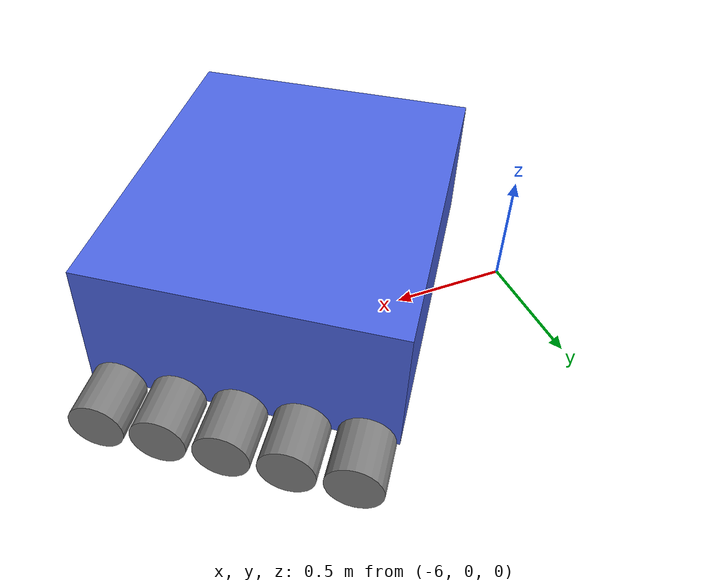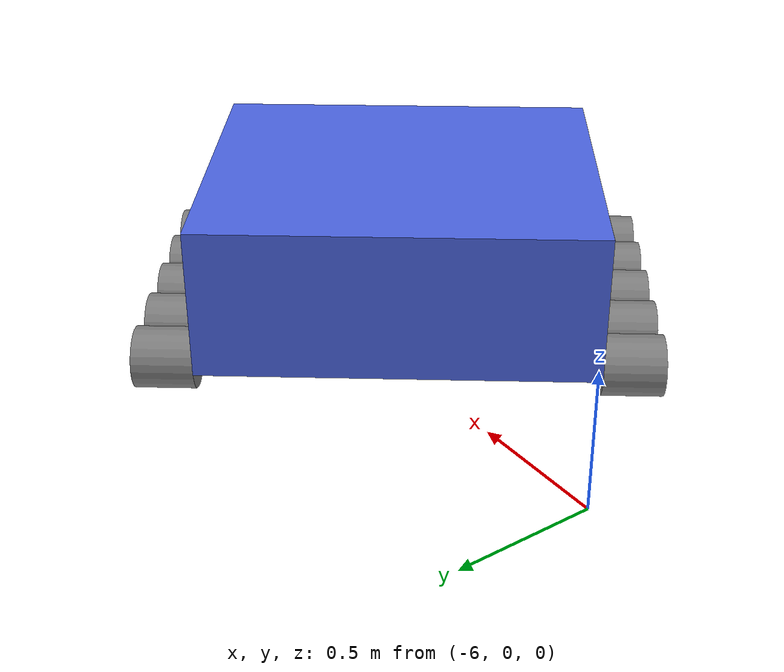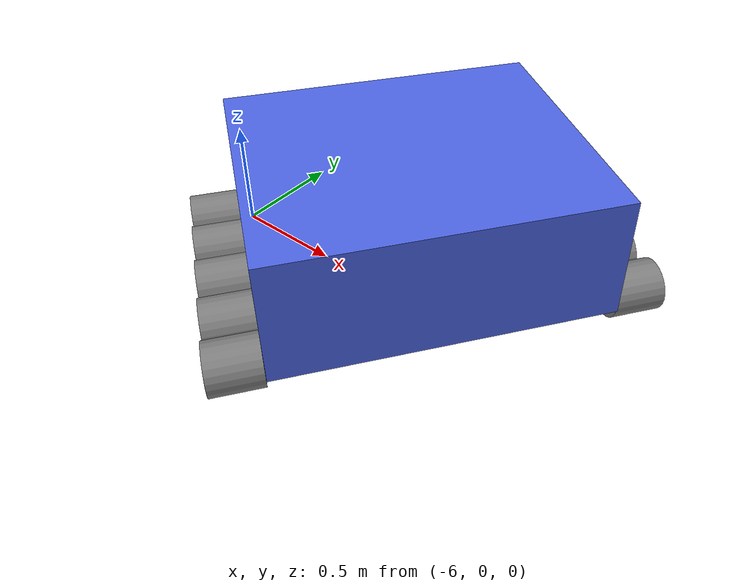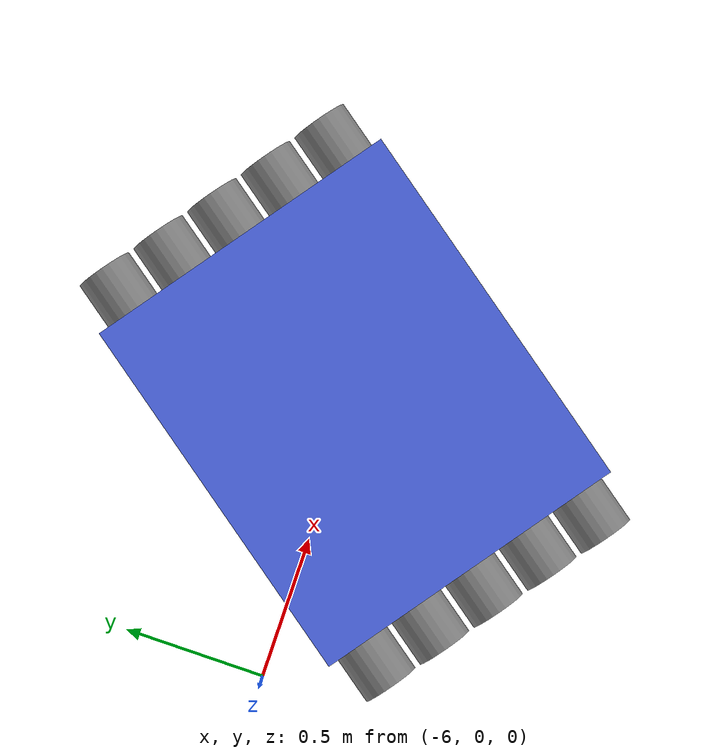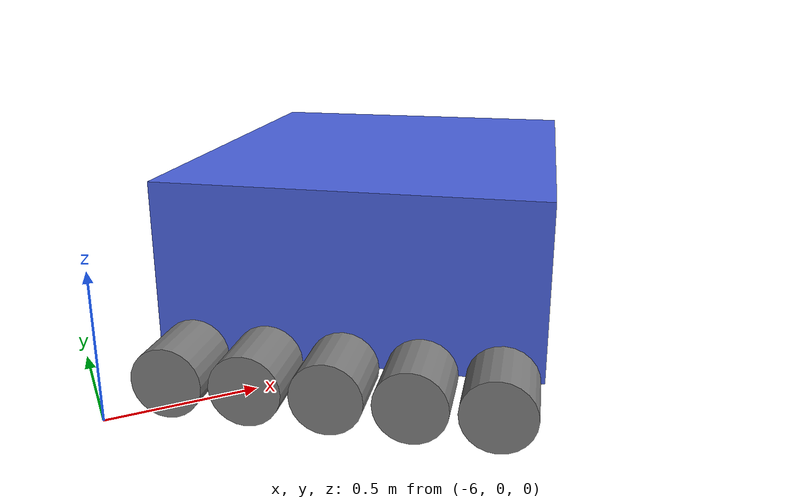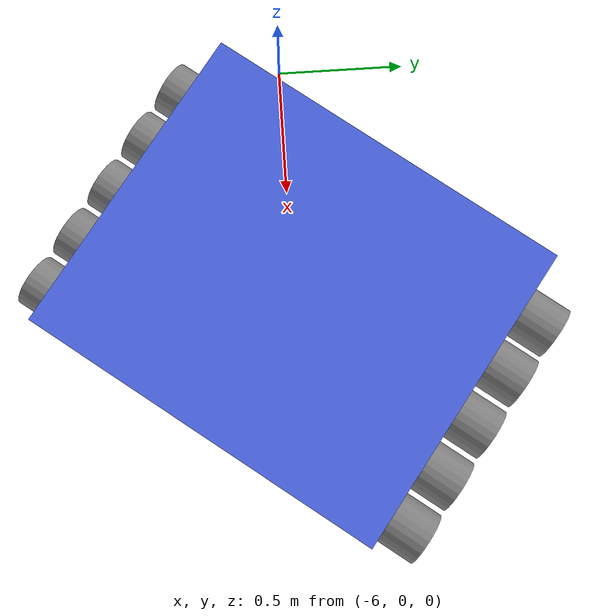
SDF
<sdf version="1.9">
 <world name="agriculture_v3">
  <physics name="1ms" type="ode">
   <max_step_size>0.002</max_step_size>
   <real_time_factor>0.5</real_time_factor>
   <ode>
    <solver><type>world</type><iters>100</iters></solver>
    <constraints><contact_surface_layer>0.001</contact_surface_layer></constraints>
   </ode>
  </physics>
  <plugin filename="gz-sim-physics-system" name="gz::sim::systems::Physics"/>
  <plugin filename="gz-sim-user-commands-system" name="gz::sim::systems::UserCommands"/>
  <plugin filename="gz-sim-scene-broadcaster-system" name="gz::sim::systems::SceneBroadcaster"/>
  <plugin filename="gz-sim-sensors-system" name="gz::sim::systems::Sensors">
   <render_engine>ogre2</render_engine>
  </plugin>
  <plugin filename="BasicSystem" name="jangauto_gazebo::BasicSystem"/>
  <plugin filename="FullSystem" name="jangauto_gazebo::FullSystem"/>
  <spherical_coordinates>
   <surface_model>EARTH_WGS84</surface_model>
   <world_frame_orientation>ENU</world_frame_orientation>
   <latitude_deg>37.0</latitude_deg>
   <longitude_deg>127.0</longitude_deg>
   <elevation>0</elevation>
   <heading_deg>0</heading_deg>
  </spherical_coordinates>
  <light type="directional" name="sun">
   <pose>0 0 40 0 0 0</pose>
   <diffuse>0.8 0.8 0.8 1</diffuse>
   <specular>0.2 0.2 0.2 1</specular>
   <attenuation>
    <range>1000</range>
    <constant>0.9</constant>
    <linear>0.01</linear>
    <quadratic>0.001</quadratic>
   </attenuation>
   <direction>-0.5 0.1 -0.9</direction>
  </light>
  <model name="tracked_v3">
   <self_collide>true</self_collide>
   <pose>-5 0 0.2 0 0 2.5</pose>
   <include merge="true"><uri>package://jangauto_description/models/tracked_v3</uri></include>
   <plugin filename="gz-sim-joint-state-publisher-system" name="gz::sim::systems::JointStatePublisher"/>
   <plugin filename="gz-sim-pose-publisher-system" name="gz::sim::systems::PosePublisher">
    <publish_model_pose>true</publish_model_pose>
    <publish_link_pose>true</publish_link_pose>
    <publish_sensor_pose>true</publish_sensor_pose>
    <use_pose_vector_msg>true</use_pose_vector_msg>
    <update_frequency>1</update_frequency>
    <static_publisher>false</static_publisher>
    <static_update_frequency>1</static_update_frequency>
   </plugin>
   <plugin filename="gz-sim-diff-drive-system" name="gz::sim::systems::DiffDrive">
    <left_joint>wheel_L1_joint</left_joint>
    <right_joint>wheel_R1_joint</right_joint>
    <left_joint>wheel_L2_joint</left_joint>
    <right_joint>wheel_R2_joint</right_joint>
    <left_joint>wheel_L3_joint</left_joint>
    <right_joint>wheel_R3_joint</right_joint>
    <left_joint>wheel_L4_joint</left_joint>
    <right_joint>wheel_R4_joint</right_joint>
    <left_joint>wheel_L5_joint</left_joint>
    <right_joint>wheel_R5_joint</right_joint>
    <wheel_separation>1.5</wheel_separation>
    <wheel_radius>0.10</wheel_radius>
    <topic>/model/tracked_v3/cmd_vel_out</topic>
    <max_linear_acceleration>1</max_linear_acceleration>
    <min_linear_acceleration>-1</min_linear_acceleration>
    <max_angular_acceleration>2</max_angular_acceleration>
    <min_angular_acceleration>-2</min_angular_acceleration>
    <max_linear_velocity>5</max_linear_velocity>
    <min_linear_velocity>-5</min_linear_velocity>
    <max_angular_velocity>50</max_angular_velocity>
    <min_angular_velocity>-50</min_angular_velocity>
    <min_wheel_torque>-40</min_wheel_torque>
    <max_wheel_torque>40</max_wheel_torque>
   </plugin>
   <plugin filename="gz-sim-imu-system" name="gz::sim::systems::Imu"/>
   <plugin filename="gz-sim-navsat-system" name="gz::sim::systems::NavSat"/>
   <plugin filename="gz-sim-magnetometer-system" name="gz::sim::systems::Magnetometer"/>
  </model>
 </world>
</sdf>

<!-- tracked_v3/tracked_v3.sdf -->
<sdf version="1.9">

  <model name="tracked_v3">
    <static>false</static>
    <pose>0 0 0 0 0 0</pose>

    <link name="base_link">
      <!-- 차체 중심: 지면에서 0.35m 높이에 배치 (바퀴 반지름 0.1m + 0.25m 여유) -->
      <pose>0 0 0.35 0 0 0</pose>

      <inertial>
          <mass>100.0</mass>
          <!-- 차체 1.1m x 1.3m x 0.5m 기준 관성 모멘트: I = (1/12) * m * (w^2 + h^2) -->
          <inertia>
          <ixx>16.25</ixx> <iyy>12.25</iyy> <izz>28.33</izz>
          <ixy>0.0</ixy> <ixz>0.0</ixz> <iyz>0.0</iyz>
          </inertia>
      </inertial>

      <collision name="chassis_collision">
          <geometry>
          <!-- 차체: 길이 1.1m, 폭 1.3m, 높이 0.5m -->
          <box><size>1.1 1.3 0.5</size></box>
          </geometry>
      </collision>

      <visual name="chassis_visual">
          <geometry>
          <box><size>1.1 1.3 0.5</size></box>
          </geometry>
          <material>
          <ambient>0.3 0.4 0.9 1</ambient>
          <diffuse>0.3 0.4 0.9 1</diffuse>
          </material>
      </visual>

      <sensor name="imu_sensor" type="imu">
          <always_on>true</always_on>
          <update_rate>25</update_rate>
          <visualize>false</visualize>
          <topic>imu</topic>
          <pose>0 0 0.25 0 0 0</pose>
          <imu>
            <!-- CAL 계산이 정확한지 확인하려면 아래 스폰 pose(agriculture_v3.sdf)의
                 yaw와 이 노드가 계산해 낸 offset이 서로 부호까지 일치하는지 보면 됨. -->
            <angular_velocity>
              <x>
                <noise type="gaussian">
                  <mean>0.0</mean>
                  <stddev>0.01</stddev>
                </noise>
              </x>
              <y>
                <noise type="gaussian">
                  <mean>0.0</mean>
                  <stddev>0.01</stddev>
                </noise>
              </y>
              <z>
                <noise type="gaussian">
                  <mean>0.0</mean>
                  <stddev>0.01</stddev>
                </noise>
              </z>
            </angular_velocity>
            <linear_acceleration>
              <x>
                <noise type="gaussian">
                  <mean>0.0</mean>
                  <stddev>0.1</stddev>
                </noise>
              </x>
              <y>
                <noise type="gaussian">
                  <mean>0.0</mean>
                  <stddev>0.1</stddev>
                </noise>
              </y>
              <z>
                <noise type="gaussian">
                  <mean>0.0</mean>
                  <stddev>0.1</stddev>
                </noise>
              </z>
            </linear_acceleration>
          </imu>
      </sensor>

      <sensor name="navsat_sensor" type="navsat">
        <always_on>true</always_on>
        <update_rate>1.0</update_rate> <!-- 주파수 현실에 맞게 수정 -->
        <topic>navsat</topic>
        <visualize>false</visualize>
          <pose>0 0 0.25 0 0 0</pose>
      </sensor>

      <sensor name="magnetometer_sensor" type="magnetometer">
        <always_on>true</always_on>
        <update_rate>25.0</update_rate>
        <topic>magnetometer</topic>
          <pose>0 0 0.25 0 0 0</pose>

      </sensor>

      <sensor name="front_depth_camera" type="rgbd_camera">
        <always_on>true</always_on>
        <update_rate>15</update_rate>
        <visualize>true</visualize>
        <topic>front_depth_camera</topic>
        <pose>0.55 0 0.25 0 0 0</pose>
        <camera>
          <horizontal_fov>1.047</horizontal_fov>
          <image>
            <width>640</width>
            <height>480</height>
            <format>R8G8B8</format>
          </image>
          <clip>
            <near>0.1</near>
            <far>10.0</far>
          </clip>
        </camera>
      </sensor>

    </link>

    <link name="wheel_R1_link">
        <!-- 전방 우측 바퀴 1: x=0.44m, y=-0.751m (우측 바깥) -->
        <pose>0.44 -0.751 0.1 1.5708 0 0</pose>

      <visual name="wheel_R1_visual">
        <geometry>
          <cylinder>
            <radius>0.1</radius>
            <length>0.2</length>
          </cylinder>
        </geometry>
        <material>
          <ambient>0.5 0.5 0.5 1</ambient>
          <diffuse>0.5 0.5 0.5 1</diffuse>
          <specular>0.1 0.1 0.1 1</specular>
        </material>
      </visual>

      <collision name="wheel_R1_collision">
        <geometry>
          <cylinder>
            <radius>0.1</radius>
            <length>0.2</length>
          </cylinder>
        </geometry>

        <surface>
          <friction>
            <ode>
              <mu>1.2</mu>
              <mu2>0.7</mu2>
              <fdir1>1 0 0</fdir1>
              <slip1>0.0</slip1>
              <slip2>0.001</slip2>
            </ode>
          </friction>
          <contact>
            <ode>
              <soft_cfm>0.002</soft_cfm>
              <soft_erp>0.002</soft_erp>
              <kp>1000</kp>
              <kd>500</kd>
            </ode>
          </contact>
        </surface>
      </collision>

      <inertial>
        <mass>5.0</mass>
        <inertia>
          <ixx>0.0365</ixx>
          <iyy>0.0365</iyy>
          <izz>0.025</izz>
          <ixy>0</ixy>
          <ixz>0</ixz>
          <iyz>0</iyz>
        </inertia>
      </inertial>
    </link>

    <joint name="wheel_R1_joint" type="revolute">
      <parent>base_link</parent>
      <child>wheel_R1_link</child>

      <pose>0 0 0 0 0 0</pose>

      <axis>
        <xyz>0 0 -1</xyz>

        <limit>
          <lower>-1.79769e+308</lower>
          <upper>1.79769e+308</upper>
          <effort>10000.0</effort>
          <velocity>10000.0</velocity>
        </limit>

        <dynamics>
          <damping>0.1</damping>
          <friction>0.01</friction>
        </dynamics>
      </axis>

      <physics>
        <provide_feedback>true</provide_feedback>
      </physics>

    </joint>

    <link name="wheel_R2_link">
        <!-- 우측 바퀴 2: x=0.22m -->
        <pose>0.22 -0.751 0.1 1.5708 0 0</pose>

      <visual name="wheel_R2_visual">
        <geometry>
          <cylinder>
            <radius>0.1</radius>
            <length>0.2</length>
          </cylinder>
        </geometry>
        <material>
          <ambient>0.5 0.5 0.5 1</ambient>
          <diffuse>0.5 0.5 0.5 1</diffuse>
          <specular>0.1 0.1 0.1 1</specular>
        </material>
      </visual>

      <collision name="wheel_R2_collision">
        <geometry>
          <cylinder>
            <radius>0.1</radius>
            <length>0.2</length>
          </cylinder>
        </geometry>

        <surface>
          <friction>
            <ode>
              <mu>1.2</mu>
              <mu2>0.7</mu2>
              <fdir1>1 0 0</fdir1>
              <slip1>0.0</slip1>
              <slip2>0.001</slip2>
            </ode>
          </friction>
          <contact>
            <ode>
              <soft_cfm>0.002</soft_cfm>
              <soft_erp>0.002</soft_erp>
              <kp>1000</kp>
              <kd>500</kd>
            </ode>
          </contact>
        </surface>
      </collision>

      <inertial>
        <mass>5.0</mass>
        <inertia>
          <ixx>0.0365</ixx>
          <iyy>0.0365</iyy>
          <izz>0.025</izz>
          <ixy>0</ixy>
          <ixz>0</ixz>
          <iyz>0</iyz>
        </inertia>
      </inertial>
    </link>

    <joint name="wheel_R2_joint" type="revolute">
      <parent>base_link</parent>
      <child>wheel_R2_link</child>

      <pose>0 0 0 0 0 0</pose>

      <axis>
        <xyz>0 0 -1</xyz>

        <limit>
          <lower>-1.79769e+308</lower>
          <upper>1.79769e+308</upper>
          <effort>10000.0</effort>
          <velocity>10000.0</velocity>
        </limit>

        <dynamics>
          <damping>0.1</damping>
          <friction>0.01</friction>
        </dynamics>
      </axis>

      <physics>
        <provide_feedback>true</provide_feedback>
      </physics>

    </joint>

    <link name="wheel_R3_link">
        <!-- 우측 바퀴 3: x=0m (중앙) -->
        <pose>0 -0.751 0.1 1.5708 0 0</pose>

            <visual name="wheel_R3_visual">
        <geometry>
          <cylinder>
            <radius>0.1</radius>
            <length>0.2</length>
          </cylinder>
        </geometry>
        <material>
          <ambient>0.5 0.5 0.5 1</ambient>
          <diffuse>0.5 0.5 0.5 1</diffuse>
          <specular>0.1 0.1 0.1 1</specular>
        </material>
      </visual>

      <collision name="wheel_R3_collision">
        <geometry>
          <cylinder>
            <radius>0.1</radius>
            <length>0.2</length>
          </cylinder>
        </geometry>

        <surface>
          <friction>
            <ode>
              <mu>1.2</mu>
              <mu2>0.7</mu2>
              <fdir1>1 0 0</fdir1>
              <slip1>0.0</slip1>
              <slip2>0.001</slip2>
            </ode>
          </friction>
          <contact>
            <ode>
              <soft_cfm>0.002</soft_cfm>
              <soft_erp>0.002</soft_erp>
              <kp>1000</kp>
              <kd>500</kd>
            </ode>
          </contact>
        </surface>
      </collision>

      <inertial>
        <mass>5.0</mass>
        <inertia>
          <ixx>0.0365</ixx>
          <iyy>0.0365</iyy>
          <izz>0.025</izz>
          <ixy>0</ixy>
          <ixz>0</ixz>
          <iyz>0</iyz>
        </inertia>
      </inertial>
    </link>

    <joint name="wheel_R3_joint" type="revolute">
      <parent>base_link</parent>
      <child>wheel_R3_link</child>

      <pose>0 0 0 0 0 0</pose>

      <axis>
        <xyz>0 0 -1</xyz>

        <limit>
          <lower>-1.79769e+308</lower>
          <upper>1.79769e+308</upper>
          <effort>10000.0</effort>
          <velocity>10000.0</velocity>
        </limit>

        <dynamics>
          <damping>0.1</damping>
          <friction>0.01</friction>
        </dynamics>
      </axis>

      <physics>
        <provide_feedback>true</provide_feedback>
      </physics>

    </joint>

    <link name="wheel_R4_link">
        <!-- 우측 바퀴 4: x=-0.22m -->
        <pose>-0.22 -0.751 0.1 1.5708 0 0</pose>

      <visual name="wheel_R4_visual">
        <geometry>
          <cylinder>
            <radius>0.1</radius>
            <length>0.2</length>
          </cylinder>
        </geometry>
        <material>
          <ambient>0.5 0.5 0.5 1</ambient>
          <diffuse>0.5 0.5 0.5 1</diffuse>
          <specular>0.1 0.1 0.1 1</specular>
        </material>
      </visual>

      <collision name="wheel_R4_collision">
        <geometry>
          <cylinder>
            <radius>0.1</radius>
            <length>0.2</length>
          </cylinder>
        </geometry>

        <surface>
          <friction>
            <ode>
              <mu>1.2</mu>
              <mu2>0.7</mu2>
              <fdir1>1 0 0</fdir1>
              <slip1>0.0</slip1>
              <slip2>0.001</slip2>
            </ode>
          </friction>
          <contact>
            <ode>
              <soft_cfm>0.002</soft_cfm>
              <soft_erp>0.002</soft_erp>
              <kp>1000</kp>
              <kd>500</kd>
            </ode>
          </contact>
        </surface>
      </collision>

      <inertial>
        <mass>5.0</mass>
        <inertia>
          <ixx>0.0365</ixx>
          <iyy>0.0365</iyy>
          <izz>0.025</izz>
          <ixy>0</ixy>
          <ixz>0</ixz>
          <iyz>0</iyz>
        </inertia>
      </inertial>
    </link>

    <joint name="wheel_R4_joint" type="revolute">
      <parent>base_link</parent>
      <child>wheel_R4_link</child>

      <pose>0 0 0 0 0 0</pose>

      <axis>
        <xyz>0 0 -1</xyz>

        <limit>
          <lower>-1.79769e+308</lower>
          <upper>1.79769e+308</upper>
          <effort>10000.0</effort>
          <velocity>10000.0</velocity>
        </limit>

        <dynamics>
          <damping>0.1</damping>
          <friction>0.01</friction>
        </dynamics>
      </axis>

      <physics>
        <provide_feedback>true</provide_feedback>
      </physics>

    </joint>

    <link name="wheel_R5_link">
        <!-- 후방 우측 바퀴 5: x=-0.44m (후방) -->
        <pose>-0.44 -0.751 0.1 1.5708 0 0</pose>

      <visual name="wheel_R5_visual">
        <geometry>
          <cylinder>
            <radius>0.1</radius>
            <length>0.2</length>
          </cylinder>
        </geometry>
        <material>
          <ambient>0.5 0.5 0.5 1</ambient>
          <diffuse>0.5 0.5 0.5 1</diffuse>
          <specular>0.1 0.1 0.1 1</specular>
        </material>
      </visual>

      <collision name="wheel_R5_collision">
        <geometry>
          <cylinder>
            <radius>0.1</radius>
            <length>0.2</length>
          </cylinder>
        </geometry>

        <surface>
          <friction>
            <ode>
              <mu>1.2</mu>
              <mu2>0.7</mu2>
              <fdir1>1 0 0</fdir1>
              <slip1>0.0</slip1>
              <slip2>0.001</slip2>
            </ode>
          </friction>
          <contact>
            <ode>
              <soft_cfm>0.002</soft_cfm>
              <soft_erp>0.002</soft_erp>
              <kp>1000</kp>
              <kd>500</kd>
            </ode>
          </contact>
        </surface>
      </collision>

      <inertial>
        <mass>5.0</mass>
        <inertia>
          <ixx>0.0365</ixx>
          <iyy>0.0365</iyy>
          <izz>0.025</izz>
          <ixy>0</ixy>
          <ixz>0</ixz>
          <iyz>0</iyz>
        </inertia>
      </inertial>
    </link>

    <joint name="wheel_R5_joint" type="revolute">
      <parent>base_link</parent>
      <child>wheel_R5_link</child>

      <pose>0 0 0 0 0 0</pose>

      <axis>
        <xyz>0 0 -1</xyz>

        <limit>
          <lower>-1.79769e+308</lower>
          <upper>1.79769e+308</upper>
          <effort>10000.0</effort>
          <velocity>10000.0</velocity>
        </limit>

        <dynamics>
          <damping>0.1</damping>
          <friction>0.01</friction>
        </dynamics>
      </axis>

      <physics>
        <provide_feedback>true</provide_feedback>
      </physics>

    </joint>

    <link name="wheel_L1_link">
        <!-- 전방 좌측 바퀴 1: x=0.44m (전방), y=0.751m (좌측 바깥) -->
        <pose>0.44 0.751 0.1 1.5708 0 0</pose>

      <visual name="wheel_L1_visual">
        <geometry>
          <cylinder>
            <radius>0.1</radius>
            <length>0.2</length>
          </cylinder>
        </geometry>
        <material>
          <ambient>0.5 0.5 0.5 1</ambient>
          <diffuse>0.5 0.5 0.5 1</diffuse>
          <specular>0.1 0.1 0.1 1</specular>
        </material>
      </visual>

      <collision name="wheel_L1_collision">
        <geometry>
          <cylinder>
            <radius>0.1</radius>
            <length>0.2</length>
          </cylinder>
        </geometry>

        <surface>
          <friction>
            <ode>
              <mu>1.2</mu>
              <mu2>0.7</mu2>
              <fdir1>1 0 0</fdir1>
              <slip1>0.0</slip1>
              <slip2>0.001</slip2>
            </ode>
          </friction>
          <contact>
            <ode>
              <soft_cfm>0.002</soft_cfm>
              <soft_erp>0.002</soft_erp>
              <kp>1000</kp>
              <kd>500</kd>
            </ode>
          </contact>
        </surface>
      </collision>

      <inertial>
        <mass>5.0</mass>
        <inertia>
          <ixx>0.0365</ixx>
          <iyy>0.0365</iyy>
          <izz>0.025</izz>
          <ixy>0</ixy>
          <ixz>0</ixz>
          <iyz>0</iyz>
        </inertia>
      </inertial>
    </link>

    <joint name="wheel_L1_joint" type="revolute">
      <parent>base_link</parent>
      <child>wheel_L1_link</child>

      <pose>0 0 0 0 0 0</pose>

      <axis>
        <xyz>0 0 -1</xyz>

        <limit>
          <lower>-1.79769e+308</lower>
          <upper>1.79769e+308</upper>
          <effort>10000.0</effort>
          <velocity>10000.0</velocity>
        </limit>

        <dynamics>
          <damping>0.1</damping>
          <friction>0.01</friction>
        </dynamics>
      </axis>

      <physics>
        <provide_feedback>true</provide_feedback>
      </physics>

    </joint>

    <link name="wheel_L2_link">
        <!-- 좌측 바퀴 2: x=0.22m -->
        <pose>0.22 0.751 0.1 1.5708 0 0</pose>

      <visual name="wheel_L2_visual">
        <geometry>
          <cylinder>
            <radius>0.1</radius>
            <length>0.2</length>
          </cylinder>
        </geometry>
        <material>
          <ambient>0.5 0.5 0.5 1</ambient>
          <diffuse>0.5 0.5 0.5 1</diffuse>
          <specular>0.1 0.1 0.1 1</specular>
        </material>
      </visual>

      <collision name="wheel_L2_collision">
        <geometry>
          <cylinder>
            <radius>0.1</radius>
            <length>0.2</length>
          </cylinder>
        </geometry>

        <surface>
          <friction>
            <ode>
              <mu>1.2</mu>
              <mu2>0.7</mu2>
              <fdir1>1 0 0</fdir1>
              <slip1>0.0</slip1>
              <slip2>0.001</slip2>
            </ode>
          </friction>
          <contact>
            <ode>
              <soft_cfm>0.002</soft_cfm>
              <soft_erp>0.002</soft_erp>
              <kp>1000</kp>
              <kd>500</kd>
            </ode>
          </contact>
        </surface>
      </collision>

      <inertial>
        <mass>5.0</mass>
        <inertia>
          <ixx>0.0365</ixx>
          <iyy>0.0365</iyy>
          <izz>0.025</izz>
          <ixy>0</ixy>
          <ixz>0</ixz>
          <iyz>0</iyz>
        </inertia>
      </inertial>
    </link>

    <joint name="wheel_L2_joint" type="revolute">
      <parent>base_link</parent>
      <child>wheel_L2_link</child>

      <pose>0 0 0 0 0 0</pose>

      <axis>
        <xyz>0 0 -1</xyz>

        <limit>
          <lower>-1.79769e+308</lower>
          <upper>1.79769e+308</upper>
          <effort>10000.0</effort>
          <velocity>10000.0</velocity>
        </limit>

        <dynamics>
          <damping>0.1</damping>
          <friction>0.01</friction>
        </dynamics>
      </axis>

      <physics>
        <provide_feedback>true</provide_feedback>
      </physics>

    </joint>

    <link name="wheel_L3_link">
        <!-- 좌측 바퀴 3: x=0m (중앙) -->
        <pose>0 0.751 0.1 1.5708 0 0</pose>

            <visual name="wheel_L3_visual">
        <geometry>
          <cylinder>
            <radius>0.1</radius>
            <length>0.2</length>
          </cylinder>
        </geometry>
        <material>
          <ambient>0.5 0.5 0.5 1</ambient>
          <diffuse>0.5 0.5 0.5 1</diffuse>
          <specular>0.1 0.1 0.1 1</specular>
        </material>
      </visual>

      <collision name="wheel_L3_collision">
        <geometry>
          <cylinder>
            <radius>0.1</radius>
            <length>0.2</length>
          </cylinder>
        </geometry>

        <surface>
          <friction>
            <ode>
              <mu>1.2</mu>
              <mu2>0.7</mu2>
              <fdir1>1 0 0</fdir1>
              <slip1>0.0</slip1>
              <slip2>0.001</slip2>
            </ode>
          </friction>
          <contact>
            <ode>
              <soft_cfm>0.002</soft_cfm>
              <soft_erp>0.002</soft_erp>
              <kp>1000</kp>
              <kd>500</kd>
            </ode>
          </contact>
        </surface>
      </collision>

      <inertial>
        <mass>5.0</mass>
        <inertia>
          <ixx>0.0365</ixx>
          <iyy>0.0365</iyy>
          <izz>0.025</izz>
          <ixy>0</ixy>
          <ixz>0</ixz>
          <iyz>0</iyz>
        </inertia>
      </inertial>
    </link>

    <joint name="wheel_L3_joint" type="revolute">
      <parent>base_link</parent>
      <child>wheel_L3_link</child>

      <pose>0 0 0 0 0 0</pose>

      <axis>
        <xyz>0 0 -1</xyz>

        <limit>
          <lower>-1.79769e+308</lower>
          <upper>1.79769e+308</upper>
          <effort>10000.0</effort>
          <velocity>10000.0</velocity>
        </limit>

        <dynamics>
          <damping>0.1</damping>
          <friction>0.01</friction>
        </dynamics>
      </axis>

      <physics>
        <provide_feedback>true</provide_feedback>
      </physics>

    </joint>

    <link name="wheel_L4_link">
        <!-- 좌측 바퀴 4: x=-0.22m -->
        <pose>-0.22 0.751 0.1 1.5708 0 0</pose>

            <visual name="wheel_L4_visual">
        <geometry>
          <cylinder>
            <radius>0.1</radius>
            <length>0.2</length>
          </cylinder>
        </geometry>
        <material>
          <ambient>0.5 0.5 0.5 1</ambient>
          <diffuse>0.5 0.5 0.5 1</diffuse>
          <specular>0.1 0.1 0.1 1</specular>
        </material>
      </visual>

      <collision name="wheel_L4_collision">
        <geometry>
          <cylinder>
            <radius>0.1</radius>
            <length>0.2</length>
          </cylinder>
        </geometry>

        <surface>
          <friction>
            <ode>
              <mu>1.2</mu>
              <mu2>0.7</mu2>
              <fdir1>1 0 0</fdir1>
              <slip1>0.0</slip1>
              <slip2>0.001</slip2>
            </ode>
          </friction>
          <contact>
            <ode>
              <soft_cfm>0.002</soft_cfm>
              <soft_erp>0.002</soft_erp>
              <kp>1000</kp>
              <kd>500</kd>
            </ode>
          </contact>
        </surface>
      </collision>

      <inertial>
        <mass>5.0</mass>
        <inertia>
          <ixx>0.0365</ixx>
          <iyy>0.0365</iyy>
          <izz>0.025</izz>
          <ixy>0</ixy>
          <ixz>0</ixz>
          <iyz>0</iyz>
        </inertia>
      </inertial>
    </link>

    <joint name="wheel_L4_joint" type="revolute">
      <parent>base_link</parent>
      <child>wheel_L4_link</child>

      <pose>0 0 0 0 0 0</pose>

      <axis>
        <xyz>0 0 -1</xyz>

        <limit>
          <lower>-1.79769e+308</lower>
          <upper>1.79769e+308</upper>
          <effort>10000.0</effort>
          <velocity>10000.0</velocity>
        </limit>

        <dynamics>
          <damping>0.1</damping>
          <friction>0.01</friction>
        </dynamics>
      </axis>

      <physics>
        <provide_feedback>true</provide_feedback>
      </physics>

    </joint>

    <link name="wheel_L5_link">
        <!-- 후방 좌측 바퀴 5: x=-0.44m (후방) -->
        <pose>-0.44 0.751 0.1 1.5708 0 0</pose>

      <visual name="wheel_L5_visual">
        <geometry>
          <cylinder>
            <radius>0.1</radius>
            <length>0.2</length>
          </cylinder>
        </geometry>
        <material>
          <ambient>0.5 0.5 0.5 1</ambient>
          <diffuse>0.5 0.5 0.5 1</diffuse>
          <specular>0.1 0.1 0.1 1</specular>
        </material>
      </visual>

      <collision name="wheel_L5_collision">
        <geometry>
          <cylinder>
            <radius>0.1</radius>
            <length>0.2</length>
          </cylinder>
        </geometry>

        <surface>
          <friction>
            <ode>
              <mu>1.2</mu>
              <mu2>0.7</mu2>
              <fdir1>1 0 0</fdir1>
              <slip1>0.0</slip1>
              <slip2>0.001</slip2>
            </ode>
          </friction>
          <contact>
            <ode>
              <soft_cfm>0.002</soft_cfm>
              <soft_erp>0.002</soft_erp>
              <kp>1000</kp>
              <kd>500</kd>
            </ode>
          </contact>
        </surface>
      </collision>

      <inertial>
        <mass>5.0</mass>
        <inertia>
          <ixx>0.0365</ixx>
          <iyy>0.0365</iyy>
          <izz>0.025</izz>
          <ixy>0</ixy>
          <ixz>0</ixz>
          <iyz>0</iyz>
        </inertia>
      </inertial>
    </link>

    <joint name="wheel_L5_joint" type="revolute">
      <parent>base_link</parent>
      <child>wheel_L5_link</child>

      <pose>0 0 0 0 0 0</pose>

      <axis>
        <xyz>0 0 -1</xyz>

        <limit>
          <lower>-1.79769e+308</lower>
          <upper>1.79769e+308</upper>
          <effort>10000.0</effort>
          <velocity>10000.0</velocity>
        </limit>

        <dynamics>
          <damping>0.1</damping>
          <friction>0.01</friction>
        </dynamics>
      </axis>

      <physics>
        <provide_feedback>true</provide_feedback>
      </physics>

    </joint>

  </model>
</sdf>
